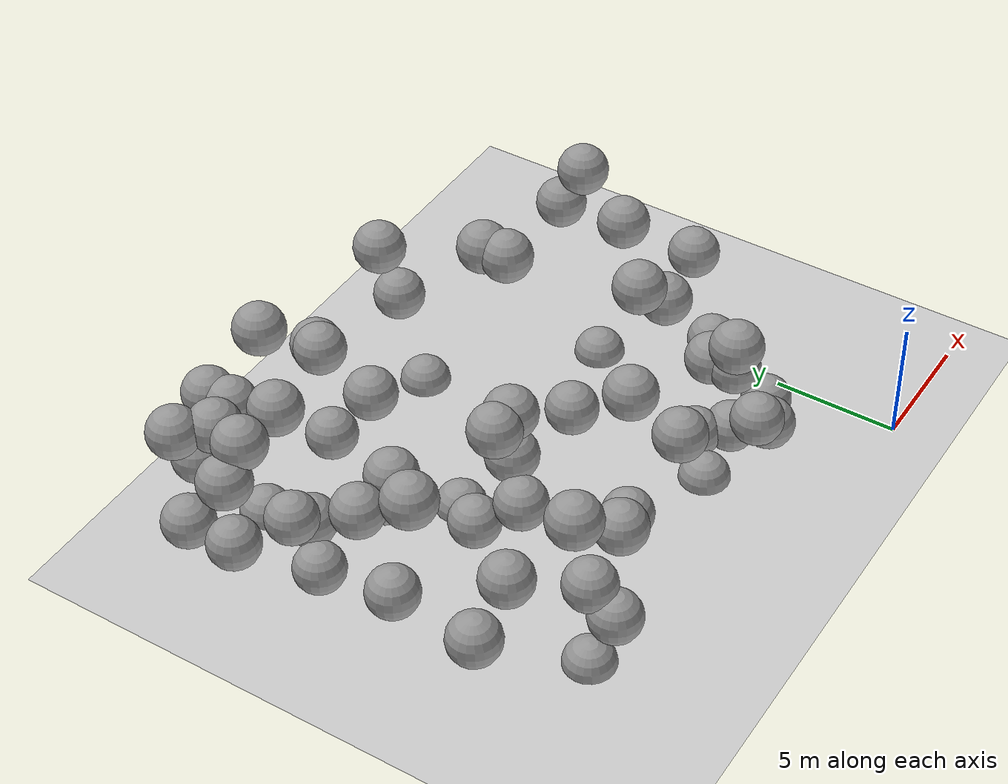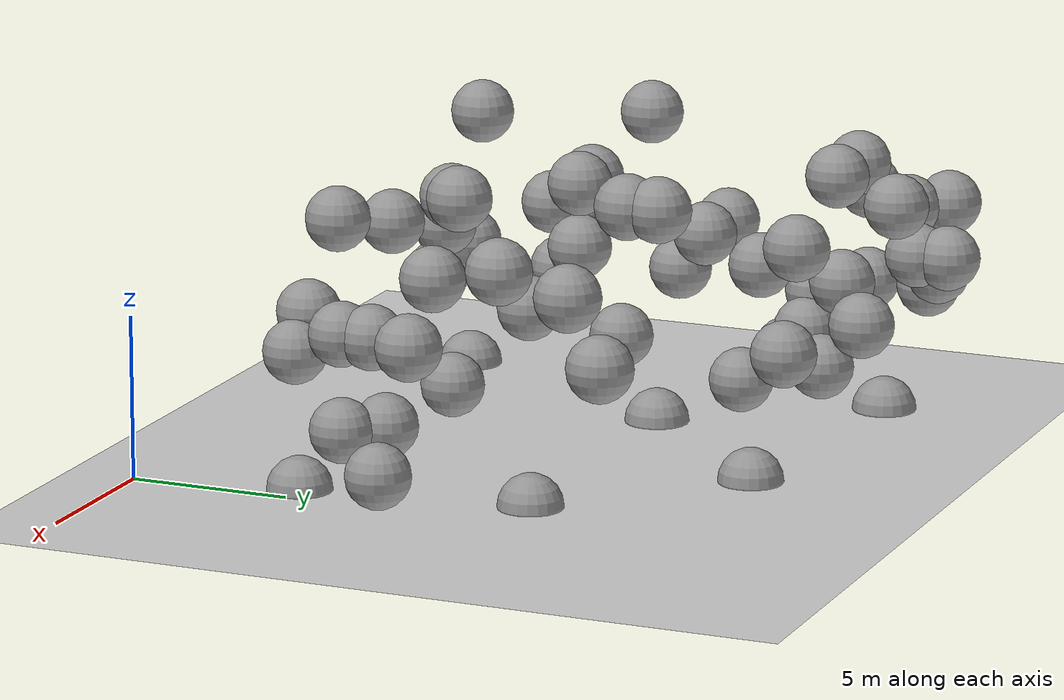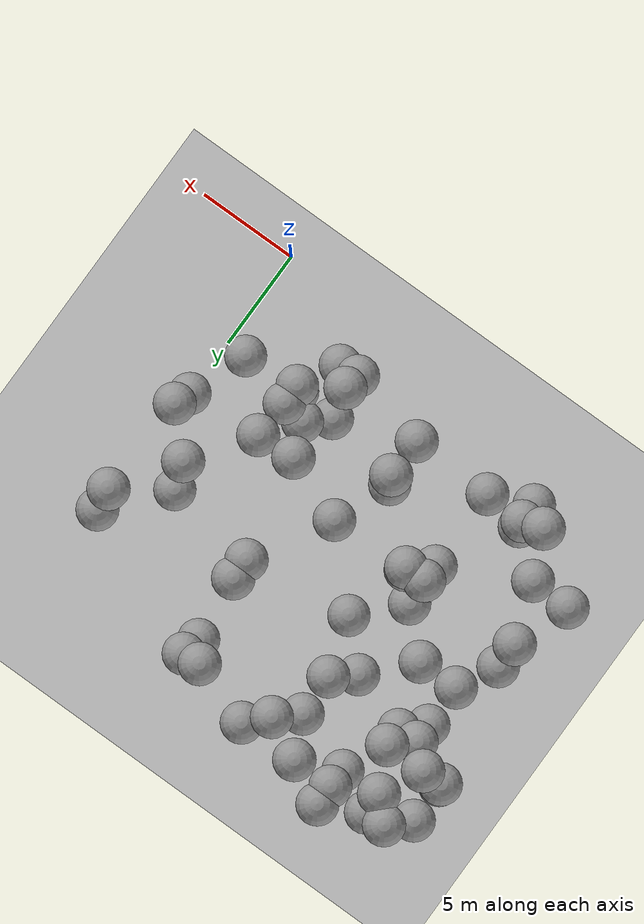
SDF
<sdf version="1.7">
 <world name="default">
  <model name="ground_plane">
   <static>1</static>
   <link name="link">
    <collision name="collision">
     <geometry><plane><normal>0 0 1</normal><size>100 100</size></plane></geometry>
     <surface>
      <contact><collide_bitmask>65535</collide_bitmask></contact>
      <friction><ode><mu>100</mu><mu2>50</mu2></ode></friction>
     </surface>
    </collision>
    <visual name="visual">
     <cast_shadows>0</cast_shadows>
     <geometry><plane><normal>0 0 1</normal><size>100 100</size></plane></geometry>
     <material>
      <script><uri>file://media/materials/scripts/gazebo.material</uri><name>Gazebo/Grey</name></script>
     </material>
    </visual>
   </link>
  </model>
  <model name="sphere_15">
   <static>1</static>
   <pose>-5 6 1 0 0 0</pose>
   <link name="link">
    <inertial>
     <mass>418.87902047863906</mass>
     <inertia>
      <ixx>167.55160819145564</ixx>
      <iyy>167.55160819145564</iyy>
      <izz>167.55160819145564</izz>
      <ixy>0</ixy>
      <ixz>0</ixz>
      <iyz>0</iyz>
     </inertia>
    </inertial>
    <collision name="collision"><geometry><sphere><radius>1.0</radius></sphere></geometry></collision>
    <visual name="visual">
     <geometry><sphere><radius>1.0</radius></sphere></geometry>
     <material>
      <script><uri>file://media/materials/scripts/gazebo.material</uri><name>Gazebo/Grey</name></script>
     </material>
    </visual>
   </link>
  </model>
  <model name="sphere_16">
   <static>1</static>
   <pose>-17 15 2 0 0 0</pose>
   <link name="link">
    <inertial>
     <mass>418.87902047863906</mass>
     <inertia>
      <ixx>167.55160819145564</ixx>
      <iyy>167.55160819145564</iyy>
      <izz>167.55160819145564</izz>
      <ixy>0</ixy>
      <ixz>0</ixz>
      <iyz>0</iyz>
     </inertia>
    </inertial>
    <collision name="collision"><geometry><sphere><radius>1.0</radius></sphere></geometry></collision>
    <visual name="visual">
     <geometry><sphere><radius>1.0</radius></sphere></geometry>
     <material>
      <script><uri>file://media/materials/scripts/gazebo.material</uri><name>Gazebo/Grey</name></script>
     </material>
    </visual>
   </link>
  </model>
  <model name="sphere_23">
   <static>1</static>
   <pose>-10 6 1 0 0 0</pose>
   <link name="link">
    <inertial>
     <mass>418.87902047863906</mass>
     <inertia>
      <ixx>167.55160819145564</ixx>
      <iyy>167.55160819145564</iyy>
      <izz>167.55160819145564</izz>
      <ixy>0</ixy>
      <ixz>0</ixz>
      <iyz>0</iyz>
     </inertia>
    </inertial>
    <collision name="collision"><geometry><sphere><radius>1.0</radius></sphere></geometry></collision>
    <visual name="visual">
     <geometry><sphere><radius>1.0</radius></sphere></geometry>
     <material>
      <script><uri>file://media/materials/scripts/gazebo.material</uri><name>Gazebo/Grey</name></script>
     </material>
    </visual>
   </link>
  </model>
  <model name="sphere_26">
   <static>1</static>
   <pose>-16 20 5 0 0 0</pose>
   <link name="link">
    <inertial>
     <mass>418.87902047863906</mass>
     <inertia>
      <ixx>167.55160819145564</ixx>
      <iyy>167.55160819145564</iyy>
      <izz>167.55160819145564</izz>
      <ixy>0</ixy>
      <ixz>0</ixz>
      <iyz>0</iyz>
     </inertia>
    </inertial>
    <collision name="collision"><geometry><sphere><radius>1.0</radius></sphere></geometry></collision>
    <visual name="visual">
     <geometry><sphere><radius>1.0</radius></sphere></geometry>
     <material>
      <script><uri>file://media/materials/scripts/gazebo.material</uri><name>Gazebo/Grey</name></script>
     </material>
    </visual>
   </link>
  </model>
  <model name="sphere_28">
   <static>1</static>
   <pose>-19 10 3 0 0 0</pose>
   <link name="link">
    <inertial>
     <mass>418.87902047863906</mass>
     <inertia>
      <ixx>167.55160819145564</ixx>
      <iyy>167.55160819145564</iyy>
      <izz>167.55160819145564</izz>
      <ixy>0</ixy>
      <ixz>0</ixz>
      <iyz>0</iyz>
     </inertia>
    </inertial>
    <collision name="collision"><geometry><sphere><radius>1.0</radius></sphere></geometry></collision>
    <visual name="visual">
     <geometry><sphere><radius>1.0</radius></sphere></geometry>
     <material>
      <script><uri>file://media/materials/scripts/gazebo.material</uri><name>Gazebo/Grey</name></script>
     </material>
    </visual>
   </link>
  </model>
  <model name="sphere_36">
   <static>1</static>
   <pose>-17 16 7 0 0 0</pose>
   <link name="link">
    <inertial>
     <mass>418.87902047863906</mass>
     <inertia>
      <ixx>167.55160819145564</ixx>
      <iyy>167.55160819145564</iyy>
      <izz>167.55160819145564</izz>
      <ixy>0</ixy>
      <ixz>0</ixz>
      <iyz>0</iyz>
     </inertia>
    </inertial>
    <collision name="collision"><geometry><sphere><radius>1.0</radius></sphere></geometry></collision>
    <visual name="visual">
     <geometry><sphere><radius>1.0</radius></sphere></geometry>
     <material>
      <script><uri>file://media/materials/scripts/gazebo.material</uri><name>Gazebo/Grey</name></script>
     </material>
    </visual>
   </link>
  </model>
  <model name="sphere_41">
   <static>1</static>
   <pose>-18 15 3 0 0 0</pose>
   <link name="link">
    <inertial>
     <mass>418.87902047863906</mass>
     <inertia>
      <ixx>167.55160819145564</ixx>
      <iyy>167.55160819145564</iyy>
      <izz>167.55160819145564</izz>
      <ixy>0</ixy>
      <ixz>0</ixz>
      <iyz>0</iyz>
     </inertia>
    </inertial>
    <collision name="collision"><geometry><sphere><radius>1.0</radius></sphere></geometry></collision>
    <visual name="visual">
     <geometry><sphere><radius>1.0</radius></sphere></geometry>
     <material>
      <script><uri>file://media/materials/scripts/gazebo.material</uri><name>Gazebo/Grey</name></script>
     </material>
    </visual>
   </link>
  </model>
  <model name="sphere_46">
   <static>1</static>
   <pose>-7 17 0 0 0 0</pose>
   <link name="link">
    <inertial>
     <mass>418.87902047863906</mass>
     <inertia>
      <ixx>167.55160819145564</ixx>
      <iyy>167.55160819145564</iyy>
      <izz>167.55160819145564</izz>
      <ixy>0</ixy>
      <ixz>0</ixz>
      <iyz>0</iyz>
     </inertia>
    </inertial>
    <collision name="collision"><geometry><sphere><radius>1.0</radius></sphere></geometry></collision>
    <visual name="visual">
     <geometry><sphere><radius>1.0</radius></sphere></geometry>
     <material>
      <script><uri>file://media/materials/scripts/gazebo.material</uri><name>Gazebo/Grey</name></script>
     </material>
    </visual>
   </link>
  </model>
  <model name="sphere_51">
   <static>1</static>
   <pose>-19 16 7 0 0 0</pose>
   <link name="link">
    <inertial>
     <mass>418.87902047863906</mass>
     <inertia>
      <ixx>167.55160819145564</ixx>
      <iyy>167.55160819145564</iyy>
      <izz>167.55160819145564</izz>
      <ixy>0</ixy>
      <ixz>0</ixz>
      <iyz>0</iyz>
     </inertia>
    </inertial>
    <collision name="collision"><geometry><sphere><radius>1.0</radius></sphere></geometry></collision>
    <visual name="visual">
     <geometry><sphere><radius>1.0</radius></sphere></geometry>
     <material>
      <script><uri>file://media/materials/scripts/gazebo.material</uri><name>Gazebo/Grey</name></script>
     </material>
    </visual>
   </link>
  </model>
  <model name="sphere_57">
   <static>1</static>
   <pose>0 8 1 0 0 0</pose>
   <link name="link">
    <inertial>
     <mass>418.87902047863906</mass>
     <inertia>
      <ixx>167.55160819145564</ixx>
      <iyy>167.55160819145564</iyy>
      <izz>167.55160819145564</izz>
      <ixy>0</ixy>
      <ixz>0</ixz>
      <iyz>0</iyz>
     </inertia>
    </inertial>
    <collision name="collision"><geometry><sphere><radius>1.0</radius></sphere></geometry></collision>
    <visual name="visual">
     <geometry><sphere><radius>1.0</radius></sphere></geometry>
     <material>
      <script><uri>file://media/materials/scripts/gazebo.material</uri><name>Gazebo/Grey</name></script>
     </material>
    </visual>
   </link>
  </model>
  <model name="sphere_59">
   <static>1</static>
   <pose>-4 6 4 0 0 0</pose>
   <link name="link">
    <inertial>
     <mass>418.87902047863906</mass>
     <inertia>
      <ixx>167.55160819145564</ixx>
      <iyy>167.55160819145564</iyy>
      <izz>167.55160819145564</izz>
      <ixy>0</ixy>
      <ixz>0</ixz>
      <iyz>0</iyz>
     </inertia>
    </inertial>
    <collision name="collision"><geometry><sphere><radius>1.0</radius></sphere></geometry></collision>
    <visual name="visual">
     <geometry><sphere><radius>1.0</radius></sphere></geometry>
     <material>
      <script><uri>file://media/materials/scripts/gazebo.material</uri><name>Gazebo/Grey</name></script>
     </material>
    </visual>
   </link>
  </model>
  <model name="sphere_61">
   <static>1</static>
   <pose>-14 4 5 0 0 0</pose>
   <link name="link">
    <inertial>
     <mass>418.87902047863906</mass>
     <inertia>
      <ixx>167.55160819145564</ixx>
      <iyy>167.55160819145564</iyy>
      <izz>167.55160819145564</izz>
      <ixy>0</ixy>
      <ixz>0</ixz>
      <iyz>0</iyz>
     </inertia>
    </inertial>
    <collision name="collision"><geometry><sphere><radius>1.0</radius></sphere></geometry></collision>
    <visual name="visual">
     <geometry><sphere><radius>1.0</radius></sphere></geometry>
     <material>
      <script><uri>file://media/materials/scripts/gazebo.material</uri><name>Gazebo/Grey</name></script>
     </material>
    </visual>
   </link>
  </model>
  <model name="sphere_62">
   <static>1</static>
   <pose>-14 8 4 0 0 0</pose>
   <link name="link">
    <inertial>
     <mass>418.87902047863906</mass>
     <inertia>
      <ixx>167.55160819145564</ixx>
      <iyy>167.55160819145564</iyy>
      <izz>167.55160819145564</izz>
      <ixy>0</ixy>
      <ixz>0</ixz>
      <iyz>0</iyz>
     </inertia>
    </inertial>
    <collision name="collision"><geometry><sphere><radius>1.0</radius></sphere></geometry></collision>
    <visual name="visual">
     <geometry><sphere><radius>1.0</radius></sphere></geometry>
     <material>
      <script><uri>file://media/materials/scripts/gazebo.material</uri><name>Gazebo/Grey</name></script>
     </material>
    </visual>
   </link>
  </model>
  <model name="sphere_63">
   <static>1</static>
   <pose>-18 14 1 0 0 0</pose>
   <link name="link">
    <inertial>
     <mass>418.87902047863906</mass>
     <inertia>
      <ixx>167.55160819145564</ixx>
      <iyy>167.55160819145564</iyy>
      <izz>167.55160819145564</izz>
      <ixy>0</ixy>
      <ixz>0</ixz>
      <iyz>0</iyz>
     </inertia>
    </inertial>
    <collision name="collision"><geometry><sphere><radius>1.0</radius></sphere></geometry></collision>
    <visual name="visual">
     <geometry><sphere><radius>1.0</radius></sphere></geometry>
     <material>
      <script><uri>file://media/materials/scripts/gazebo.material</uri><name>Gazebo/Grey</name></script>
     </material>
    </visual>
   </link>
  </model>
  <model name="sphere_71">
   <static>1</static>
   <pose>-14 14 1 0 0 0</pose>
   <link name="link">
    <inertial>
     <mass>418.87902047863906</mass>
     <inertia>
      <ixx>167.55160819145564</ixx>
      <iyy>167.55160819145564</iyy>
      <izz>167.55160819145564</izz>
      <ixy>0</ixy>
      <ixz>0</ixz>
      <iyz>0</iyz>
     </inertia>
    </inertial>
    <collision name="collision"><geometry><sphere><radius>1.0</radius></sphere></geometry></collision>
    <visual name="visual">
     <geometry><sphere><radius>1.0</radius></sphere></geometry>
     <material>
      <script><uri>file://media/materials/scripts/gazebo.material</uri><name>Gazebo/Grey</name></script>
     </material>
    </visual>
   </link>
  </model>
  <model name="sphere_78">
   <static>1</static>
   <pose>-16 4 4 0 0 0</pose>
   <link name="link">
    <inertial>
     <mass>418.87902047863906</mass>
     <inertia>
      <ixx>167.55160819145564</ixx>
      <iyy>167.55160819145564</iyy>
      <izz>167.55160819145564</izz>
      <ixy>0</ixy>
      <ixz>0</ixz>
      <iyz>0</iyz>
     </inertia>
    </inertial>
    <collision name="collision"><geometry><sphere><radius>1.0</radius></sphere></geometry></collision>
    <visual name="visual">
     <geometry><sphere><radius>1.0</radius></sphere></geometry>
     <material>
      <script><uri>file://media/materials/scripts/gazebo.material</uri><name>Gazebo/Grey</name></script>
     </material>
    </visual>
   </link>
  </model>
  <model name="sphere_86">
   <static>1</static>
   <pose>-4 5 4 0 0 0</pose>
   <link name="link">
    <inertial>
     <mass>418.87902047863906</mass>
     <inertia>
      <ixx>167.55160819145564</ixx>
      <iyy>167.55160819145564</iyy>
      <izz>167.55160819145564</izz>
      <ixy>0</ixy>
      <ixz>0</ixz>
      <iyz>0</iyz>
     </inertia>
    </inertial>
    <collision name="collision"><geometry><sphere><radius>1.0</radius></sphere></geometry></collision>
    <visual name="visual">
     <geometry><sphere><radius>1.0</radius></sphere></geometry>
     <material>
      <script><uri>file://media/materials/scripts/gazebo.material</uri><name>Gazebo/Grey</name></script>
     </material>
    </visual>
   </link>
  </model>
  <model name="sphere_90">
   <static>1</static>
   <pose>-19 19 6 0 0 0</pose>
   <link name="link">
    <inertial>
     <mass>418.87902047863906</mass>
     <inertia>
      <ixx>167.55160819145564</ixx>
      <iyy>167.55160819145564</iyy>
      <izz>167.55160819145564</izz>
      <ixy>0</ixy>
      <ixz>0</ixz>
      <iyz>0</iyz>
     </inertia>
    </inertial>
    <collision name="collision"><geometry><sphere><radius>1.0</radius></sphere></geometry></collision>
    <visual name="visual">
     <geometry><sphere><radius>1.0</radius></sphere></geometry>
     <material>
      <script><uri>file://media/materials/scripts/gazebo.material</uri><name>Gazebo/Grey</name></script>
     </material>
    </visual>
   </link>
  </model>
  <model name="sphere_95">
   <static>1</static>
   <pose>-7 14 8 0 0 0</pose>
   <link name="link">
    <inertial>
     <mass>418.87902047863906</mass>
     <inertia>
      <ixx>167.55160819145564</ixx>
      <iyy>167.55160819145564</iyy>
      <izz>167.55160819145564</izz>
      <ixy>0</ixy>
      <ixz>0</ixz>
      <iyz>0</iyz>
     </inertia>
    </inertial>
    <collision name="collision"><geometry><sphere><radius>1.0</radius></sphere></geometry></collision>
    <visual name="visual">
     <geometry><sphere><radius>1.0</radius></sphere></geometry>
     <material>
      <script><uri>file://media/materials/scripts/gazebo.material</uri><name>Gazebo/Grey</name></script>
     </material>
    </visual>
   </link>
  </model>
  <model name="sphere_96">
   <static>1</static>
   <pose>-18 12 5 0 0 0</pose>
   <link name="link">
    <inertial>
     <mass>418.87902047863906</mass>
     <inertia>
      <ixx>167.55160819145564</ixx>
      <iyy>167.55160819145564</iyy>
      <izz>167.55160819145564</izz>
      <ixy>0</ixy>
      <ixz>0</ixz>
      <iyz>0</iyz>
     </inertia>
    </inertial>
    <collision name="collision"><geometry><sphere><radius>1.0</radius></sphere></geometry></collision>
    <visual name="visual">
     <geometry><sphere><radius>1.0</radius></sphere></geometry>
     <material>
      <script><uri>file://media/materials/scripts/gazebo.material</uri><name>Gazebo/Grey</name></script>
     </material>
    </visual>
   </link>
  </model>
  <model name="sphere_97">
   <static>1</static>
   <pose>-6 3 4 0 0 0</pose>
   <link name="link">
    <inertial>
     <mass>418.87902047863906</mass>
     <inertia>
      <ixx>167.55160819145564</ixx>
      <iyy>167.55160819145564</iyy>
      <izz>167.55160819145564</izz>
      <ixy>0</ixy>
      <ixz>0</ixz>
      <iyz>0</iyz>
     </inertia>
    </inertial>
    <collision name="collision"><geometry><sphere><radius>1.0</radius></sphere></geometry></collision>
    <visual name="visual">
     <geometry><sphere><radius>1.0</radius></sphere></geometry>
     <material>
      <script><uri>file://media/materials/scripts/gazebo.material</uri><name>Gazebo/Grey</name></script>
     </material>
    </visual>
   </link>
  </model>
  <model name="sphere_100">
   <static>1</static>
   <pose>-18 6 5 0 0 0</pose>
   <link name="link">
    <inertial>
     <mass>418.87902047863906</mass>
     <inertia>
      <ixx>167.55160819145564</ixx>
      <iyy>167.55160819145564</iyy>
      <izz>167.55160819145564</izz>
      <ixy>0</ixy>
      <ixz>0</ixz>
      <iyz>0</iyz>
     </inertia>
    </inertial>
    <collision name="collision"><geometry><sphere><radius>1.0</radius></sphere></geometry></collision>
    <visual name="visual">
     <geometry><sphere><radius>1.0</radius></sphere></geometry>
     <material>
      <script><uri>file://media/materials/scripts/gazebo.material</uri><name>Gazebo/Grey</name></script>
     </material>
    </visual>
   </link>
  </model>
  <model name="sphere_101">
   <static>1</static>
   <pose>-2 12 0 0 0 0</pose>
   <link name="link">
    <inertial>
     <mass>418.87902047863906</mass>
     <inertia>
      <ixx>167.55160819145564</ixx>
      <iyy>167.55160819145564</iyy>
      <izz>167.55160819145564</izz>
      <ixy>0</ixy>
      <ixz>0</ixz>
      <iyz>0</iyz>
     </inertia>
    </inertial>
    <collision name="collision"><geometry><sphere><radius>1.0</radius></sphere></geometry></collision>
    <visual name="visual">
     <geometry><sphere><radius>1.0</radius></sphere></geometry>
     <material>
      <script><uri>file://media/materials/scripts/gazebo.material</uri><name>Gazebo/Grey</name></script>
     </material>
    </visual>
   </link>
  </model>
  <model name="sphere_108">
   <static>1</static>
   <pose>-16 18 0 0 0 0</pose>
   <link name="link">
    <inertial>
     <mass>418.87902047863906</mass>
     <inertia>
      <ixx>167.55160819145564</ixx>
      <iyy>167.55160819145564</iyy>
      <izz>167.55160819145564</izz>
      <ixy>0</ixy>
      <ixz>0</ixz>
      <iyz>0</iyz>
     </inertia>
    </inertial>
    <collision name="collision"><geometry><sphere><radius>1.0</radius></sphere></geometry></collision>
    <visual name="visual">
     <geometry><sphere><radius>1.0</radius></sphere></geometry>
     <material>
      <script><uri>file://media/materials/scripts/gazebo.material</uri><name>Gazebo/Grey</name></script>
     </material>
    </visual>
   </link>
  </model>
  <model name="sphere_109">
   <static>1</static>
   <pose>-2 11 7 0 0 0</pose>
   <link name="link">
    <inertial>
     <mass>418.87902047863906</mass>
     <inertia>
      <ixx>167.55160819145564</ixx>
      <iyy>167.55160819145564</iyy>
      <izz>167.55160819145564</izz>
      <ixy>0</ixy>
      <ixz>0</ixz>
      <iyz>0</iyz>
     </inertia>
    </inertial>
    <collision name="collision"><geometry><sphere><radius>1.0</radius></sphere></geometry></collision>
    <visual name="visual">
     <geometry><sphere><radius>1.0</radius></sphere></geometry>
     <material>
      <script><uri>file://media/materials/scripts/gazebo.material</uri><name>Gazebo/Grey</name></script>
     </material>
    </visual>
   </link>
  </model>
  <model name="sphere_113">
   <static>1</static>
   <pose>0 14 7 0 0 0</pose>
   <link name="link">
    <inertial>
     <mass>418.87902047863906</mass>
     <inertia>
      <ixx>167.55160819145564</ixx>
      <iyy>167.55160819145564</iyy>
      <izz>167.55160819145564</izz>
      <ixy>0</ixy>
      <ixz>0</ixz>
      <iyz>0</iyz>
     </inertia>
    </inertial>
    <collision name="collision"><geometry><sphere><radius>1.0</radius></sphere></geometry></collision>
    <visual name="visual">
     <geometry><sphere><radius>1.0</radius></sphere></geometry>
     <material>
      <script><uri>file://media/materials/scripts/gazebo.material</uri><name>Gazebo/Grey</name></script>
     </material>
    </visual>
   </link>
  </model>
  <model name="sphere_116">
   <static>1</static>
   <pose>-18 18 6 0 0 0</pose>
   <link name="link">
    <inertial>
     <mass>418.87902047863906</mass>
     <inertia>
      <ixx>167.55160819145564</ixx>
      <iyy>167.55160819145564</iyy>
      <izz>167.55160819145564</izz>
      <ixy>0</ixy>
      <ixz>0</ixz>
      <iyz>0</iyz>
     </inertia>
    </inertial>
    <collision name="collision"><geometry><sphere><radius>1.0</radius></sphere></geometry></collision>
    <visual name="visual">
     <geometry><sphere><radius>1.0</radius></sphere></geometry>
     <material>
      <script><uri>file://media/materials/scripts/gazebo.material</uri><name>Gazebo/Grey</name></script>
     </material>
    </visual>
   </link>
  </model>
  <model name="sphere_121">
   <static>1</static>
   <pose>-6 8 8 0 0 0</pose>
   <link name="link">
    <inertial>
     <mass>418.87902047863906</mass>
     <inertia>
      <ixx>167.55160819145564</ixx>
      <iyy>167.55160819145564</iyy>
      <izz>167.55160819145564</izz>
      <ixy>0</ixy>
      <ixz>0</ixz>
      <iyz>0</iyz>
     </inertia>
    </inertial>
    <collision name="collision"><geometry><sphere><radius>1.0</radius></sphere></geometry></collision>
    <visual name="visual">
     <geometry><sphere><radius>1.0</radius></sphere></geometry>
     <material>
      <script><uri>file://media/materials/scripts/gazebo.material</uri><name>Gazebo/Grey</name></script>
     </material>
    </visual>
   </link>
  </model>
  <model name="sphere_142">
   <static>1</static>
   <pose>-13 17 2 0 0 0</pose>
   <link name="link">
    <inertial>
     <mass>418.87902047863906</mass>
     <inertia>
      <ixx>167.55160819145564</ixx>
      <iyy>167.55160819145564</iyy>
      <izz>167.55160819145564</izz>
      <ixy>0</ixy>
      <ixz>0</ixz>
      <iyz>0</iyz>
     </inertia>
    </inertial>
    <collision name="collision"><geometry><sphere><radius>1.0</radius></sphere></geometry></collision>
    <visual name="visual">
     <geometry><sphere><radius>1.0</radius></sphere></geometry>
     <material>
      <script><uri>file://media/materials/scripts/gazebo.material</uri><name>Gazebo/Grey</name></script>
     </material>
    </visual>
   </link>
  </model>
  <model name="sphere_144">
   <static>1</static>
   <pose>-7 13 8 0 0 0</pose>
   <link name="link">
    <inertial>
     <mass>418.87902047863906</mass>
     <inertia>
      <ixx>167.55160819145564</ixx>
      <iyy>167.55160819145564</iyy>
      <izz>167.55160819145564</izz>
      <ixy>0</ixy>
      <ixz>0</ixz>
      <iyz>0</iyz>
     </inertia>
    </inertial>
    <collision name="collision"><geometry><sphere><radius>1.0</radius></sphere></geometry></collision>
    <visual name="visual">
     <geometry><sphere><radius>1.0</radius></sphere></geometry>
     <material>
      <script><uri>file://media/materials/scripts/gazebo.material</uri><name>Gazebo/Grey</name></script>
     </material>
    </visual>
   </link>
  </model>
  <model name="sphere_145">
   <static>1</static>
   <pose>-14 19 7 0 0 0</pose>
   <link name="link">
    <inertial>
     <mass>418.87902047863906</mass>
     <inertia>
      <ixx>167.55160819145564</ixx>
      <iyy>167.55160819145564</iyy>
      <izz>167.55160819145564</izz>
      <ixy>0</ixy>
      <ixz>0</ixz>
      <iyz>0</iyz>
     </inertia>
    </inertial>
    <collision name="collision"><geometry><sphere><radius>1.0</radius></sphere></geometry></collision>
    <visual name="visual">
     <geometry><sphere><radius>1.0</radius></sphere></geometry>
     <material>
      <script><uri>file://media/materials/scripts/gazebo.material</uri><name>Gazebo/Grey</name></script>
     </material>
    </visual>
   </link>
  </model>
  <model name="sphere_148">
   <static>1</static>
   <pose>-8 18 7 0 0 0</pose>
   <link name="link">
    <inertial>
     <mass>418.87902047863906</mass>
     <inertia>
      <ixx>167.55160819145564</ixx>
      <iyy>167.55160819145564</iyy>
      <izz>167.55160819145564</izz>
      <ixy>0</ixy>
      <ixz>0</ixz>
      <iyz>0</iyz>
     </inertia>
    </inertial>
    <collision name="collision"><geometry><sphere><radius>1.0</radius></sphere></geometry></collision>
    <visual name="visual">
     <geometry><sphere><radius>1.0</radius></sphere></geometry>
     <material>
      <script><uri>file://media/materials/scripts/gazebo.material</uri><name>Gazebo/Grey</name></script>
     </material>
    </visual>
   </link>
  </model>
  <model name="sphere_155">
   <static>1</static>
   <pose>-6 4 7 0 0 0</pose>
   <link name="link">
    <inertial>
     <mass>418.87902047863906</mass>
     <inertia>
      <ixx>167.55160819145564</ixx>
      <iyy>167.55160819145564</iyy>
      <izz>167.55160819145564</izz>
      <ixy>0</ixy>
      <ixz>0</ixz>
      <iyz>0</iyz>
     </inertia>
    </inertial>
    <collision name="collision"><geometry><sphere><radius>1.0</radius></sphere></geometry></collision>
    <visual name="visual">
     <geometry><sphere><radius>1.0</radius></sphere></geometry>
     <material>
      <script><uri>file://media/materials/scripts/gazebo.material</uri><name>Gazebo/Grey</name></script>
     </material>
    </visual>
   </link>
  </model>
  <model name="sphere_156">
   <static>1</static>
   <pose>-13 9 5 0 0 0</pose>
   <link name="link">
    <inertial>
     <mass>418.87902047863906</mass>
     <inertia>
      <ixx>167.55160819145564</ixx>
      <iyy>167.55160819145564</iyy>
      <izz>167.55160819145564</izz>
      <ixy>0</ixy>
      <ixz>0</ixz>
      <iyz>0</iyz>
     </inertia>
    </inertial>
    <collision name="collision"><geometry><sphere><radius>1.0</radius></sphere></geometry></collision>
    <visual name="visual">
     <geometry><sphere><radius>1.0</radius></sphere></geometry>
     <material>
      <script><uri>file://media/materials/scripts/gazebo.material</uri><name>Gazebo/Grey</name></script>
     </material>
    </visual>
   </link>
  </model>
  <model name="sphere_157">
   <static>1</static>
   <pose>-14 10 2 0 0 0</pose>
   <link name="link">
    <inertial>
     <mass>418.87902047863906</mass>
     <inertia>
      <ixx>167.55160819145564</ixx>
      <iyy>167.55160819145564</iyy>
      <izz>167.55160819145564</izz>
      <ixy>0</ixy>
      <ixz>0</ixz>
      <iyz>0</iyz>
     </inertia>
    </inertial>
    <collision name="collision"><geometry><sphere><radius>1.0</radius></sphere></geometry></collision>
    <visual name="visual">
     <geometry><sphere><radius>1.0</radius></sphere></geometry>
     <material>
      <script><uri>file://media/materials/scripts/gazebo.material</uri><name>Gazebo/Grey</name></script>
     </material>
    </visual>
   </link>
  </model>
  <model name="sphere_159">
   <static>1</static>
   <pose>0 15 5 0 0 0</pose>
   <link name="link">
    <inertial>
     <mass>418.87902047863906</mass>
     <inertia>
      <ixx>167.55160819145564</ixx>
      <iyy>167.55160819145564</iyy>
      <izz>167.55160819145564</izz>
      <ixy>0</ixy>
      <ixz>0</ixz>
      <iyz>0</iyz>
     </inertia>
    </inertial>
    <collision name="collision"><geometry><sphere><radius>1.0</radius></sphere></geometry></collision>
    <visual name="visual">
     <geometry><sphere><radius>1.0</radius></sphere></geometry>
     <material>
      <script><uri>file://media/materials/scripts/gazebo.material</uri><name>Gazebo/Grey</name></script>
     </material>
    </visual>
   </link>
  </model>
  <model name="sphere_161">
   <static>1</static>
   <pose>-13 15 5 0 0 0</pose>
   <link name="link">
    <inertial>
     <mass>418.87902047863906</mass>
     <inertia>
      <ixx>167.55160819145564</ixx>
      <iyy>167.55160819145564</iyy>
      <izz>167.55160819145564</izz>
      <ixy>0</ixy>
      <ixz>0</ixz>
      <iyz>0</iyz>
     </inertia>
    </inertial>
    <collision name="collision"><geometry><sphere><radius>1.0</radius></sphere></geometry></collision>
    <visual name="visual">
     <geometry><sphere><radius>1.0</radius></sphere></geometry>
     <material>
      <script><uri>file://media/materials/scripts/gazebo.material</uri><name>Gazebo/Grey</name></script>
     </material>
    </visual>
   </link>
  </model>
  <model name="sphere_163">
   <static>1</static>
   <pose>-12 12 0 0 0 0</pose>
   <link name="link">
    <inertial>
     <mass>418.87902047863906</mass>
     <inertia>
      <ixx>167.55160819145564</ixx>
      <iyy>167.55160819145564</iyy>
      <izz>167.55160819145564</izz>
      <ixy>0</ixy>
      <ixz>0</ixz>
      <iyz>0</iyz>
     </inertia>
    </inertial>
    <collision name="collision"><geometry><sphere><radius>1.0</radius></sphere></geometry></collision>
    <visual name="visual">
     <geometry><sphere><radius>1.0</radius></sphere></geometry>
     <material>
      <script><uri>file://media/materials/scripts/gazebo.material</uri><name>Gazebo/Grey</name></script>
     </material>
    </visual>
   </link>
  </model>
  <model name="sphere_167">
   <static>1</static>
   <pose>-20 16 3 0 0 0</pose>
   <link name="link">
    <inertial>
     <mass>418.87902047863906</mass>
     <inertia>
      <ixx>167.55160819145564</ixx>
      <iyy>167.55160819145564</iyy>
      <izz>167.55160819145564</izz>
      <ixy>0</ixy>
      <ixz>0</ixz>
      <iyz>0</iyz>
     </inertia>
    </inertial>
    <collision name="collision"><geometry><sphere><radius>1.0</radius></sphere></geometry></collision>
    <visual name="visual">
     <geometry><sphere><radius>1.0</radius></sphere></geometry>
     <material>
      <script><uri>file://media/materials/scripts/gazebo.material</uri><name>Gazebo/Grey</name></script>
     </material>
    </visual>
   </link>
  </model>
  <model name="sphere_169">
   <static>1</static>
   <pose>-9 9 4 0 0 0</pose>
   <link name="link">
    <inertial>
     <mass>418.87902047863906</mass>
     <inertia>
      <ixx>167.55160819145564</ixx>
      <iyy>167.55160819145564</iyy>
      <izz>167.55160819145564</izz>
      <ixy>0</ixy>
      <ixz>0</ixz>
      <iyz>0</iyz>
     </inertia>
    </inertial>
    <collision name="collision"><geometry><sphere><radius>1.0</radius></sphere></geometry></collision>
    <visual name="visual">
     <geometry><sphere><radius>1.0</radius></sphere></geometry>
     <material>
      <script><uri>file://media/materials/scripts/gazebo.material</uri><name>Gazebo/Grey</name></script>
     </material>
    </visual>
   </link>
  </model>
  <model name="sphere_173">
   <static>1</static>
   <pose>0 9 5 0 0 0</pose>
   <link name="link">
    <inertial>
     <mass>418.87902047863906</mass>
     <inertia>
      <ixx>167.55160819145564</ixx>
      <iyy>167.55160819145564</iyy>
      <izz>167.55160819145564</izz>
      <ixy>0</ixy>
      <ixz>0</ixz>
      <iyz>0</iyz>
     </inertia>
    </inertial>
    <collision name="collision"><geometry><sphere><radius>1.0</radius></sphere></geometry></collision>
    <visual name="visual">
     <geometry><sphere><radius>1.0</radius></sphere></geometry>
     <material>
      <script><uri>file://media/materials/scripts/gazebo.material</uri><name>Gazebo/Grey</name></script>
     </material>
    </visual>
   </link>
  </model>
  <model name="sphere_177">
   <static>1</static>
   <pose>-17 4 8 0 0 0</pose>
   <link name="link">
    <inertial>
     <mass>418.87902047863906</mass>
     <inertia>
      <ixx>167.55160819145564</ixx>
      <iyy>167.55160819145564</iyy>
      <izz>167.55160819145564</izz>
      <ixy>0</ixy>
      <ixz>0</ixz>
      <iyz>0</iyz>
     </inertia>
    </inertial>
    <collision name="collision"><geometry><sphere><radius>1.0</radius></sphere></geometry></collision>
    <visual name="visual">
     <geometry><sphere><radius>1.0</radius></sphere></geometry>
     <material>
      <script><uri>file://media/materials/scripts/gazebo.material</uri><name>Gazebo/Grey</name></script>
     </material>
    </visual>
   </link>
  </model>
  <model name="sphere_178">
   <static>1</static>
   <pose>-4 8 6 0 0 0</pose>
   <link name="link">
    <inertial>
     <mass>418.87902047863906</mass>
     <inertia>
      <ixx>167.55160819145564</ixx>
      <iyy>167.55160819145564</iyy>
      <izz>167.55160819145564</izz>
      <ixy>0</ixy>
      <ixz>0</ixz>
      <iyz>0</iyz>
     </inertia>
    </inertial>
    <collision name="collision"><geometry><sphere><radius>1.0</radius></sphere></geometry></collision>
    <visual name="visual">
     <geometry><sphere><radius>1.0</radius></sphere></geometry>
     <material>
      <script><uri>file://media/materials/scripts/gazebo.material</uri><name>Gazebo/Grey</name></script>
     </material>
    </visual>
   </link>
  </model>
  <model name="sphere_181">
   <static>1</static>
   <pose>-5 3 3 0 0 0</pose>
   <link name="link">
    <inertial>
     <mass>418.87902047863906</mass>
     <inertia>
      <ixx>167.55160819145564</ixx>
      <iyy>167.55160819145564</iyy>
      <izz>167.55160819145564</izz>
      <ixy>0</ixy>
      <ixz>0</ixz>
      <iyz>0</iyz>
     </inertia>
    </inertial>
    <collision name="collision"><geometry><sphere><radius>1.0</radius></sphere></geometry></collision>
    <visual name="visual">
     <geometry><sphere><radius>1.0</radius></sphere></geometry>
     <material>
      <script><uri>file://media/materials/scripts/gazebo.material</uri><name>Gazebo/Grey</name></script>
     </material>
    </visual>
   </link>
  </model>
  <model name="sphere_196">
   <static>1</static>
   <pose>-13 9 7 0 0 0</pose>
   <link name="link">
    <inertial>
     <mass>418.87902047863906</mass>
     <inertia>
      <ixx>167.55160819145564</ixx>
      <iyy>167.55160819145564</iyy>
      <izz>167.55160819145564</izz>
      <ixy>0</ixy>
      <ixz>0</ixz>
      <iyz>0</iyz>
     </inertia>
    </inertial>
    <collision name="collision"><geometry><sphere><radius>1.0</radius></sphere></geometry></collision>
    <visual name="visual">
     <geometry><sphere><radius>1.0</radius></sphere></geometry>
     <material>
      <script><uri>file://media/materials/scripts/gazebo.material</uri><name>Gazebo/Grey</name></script>
     </material>
    </visual>
   </link>
  </model>
  <model name="sphere_200">
   <static>1</static>
   <pose>-10 4 6 0 0 0</pose>
   <link name="link">
    <inertial>
     <mass>418.87902047863906</mass>
     <inertia>
      <ixx>167.55160819145564</ixx>
      <iyy>167.55160819145564</iyy>
      <izz>167.55160819145564</izz>
      <ixy>0</ixy>
      <ixz>0</ixz>
      <iyz>0</iyz>
     </inertia>
    </inertial>
    <collision name="collision"><geometry><sphere><radius>1.0</radius></sphere></geometry></collision>
    <visual name="visual">
     <geometry><sphere><radius>1.0</radius></sphere></geometry>
     <material>
      <script><uri>file://media/materials/scripts/gazebo.material</uri><name>Gazebo/Grey</name></script>
     </material>
    </visual>
   </link>
  </model>
  <model name="sphere_201">
   <static>1</static>
   <pose>-10 6 7 0 0 0</pose>
   <link name="link">
    <inertial>
     <mass>418.87902047863906</mass>
     <inertia>
      <ixx>167.55160819145564</ixx>
      <iyy>167.55160819145564</iyy>
      <izz>167.55160819145564</izz>
      <ixy>0</ixy>
      <ixz>0</ixz>
      <iyz>0</iyz>
     </inertia>
    </inertial>
    <collision name="collision"><geometry><sphere><radius>1.0</radius></sphere></geometry></collision>
    <visual name="visual">
     <geometry><sphere><radius>1.0</radius></sphere></geometry>
     <material>
      <script><uri>file://media/materials/scripts/gazebo.material</uri><name>Gazebo/Grey</name></script>
     </material>
    </visual>
   </link>
  </model>
  <model name="sphere_204">
   <static>1</static>
   <pose>-14 9 7 0 0 0</pose>
   <link name="link">
    <inertial>
     <mass>418.87902047863906</mass>
     <inertia>
      <ixx>167.55160819145564</ixx>
      <iyy>167.55160819145564</iyy>
      <izz>167.55160819145564</izz>
      <ixy>0</ixy>
      <ixz>0</ixz>
      <iyz>0</iyz>
     </inertia>
    </inertial>
    <collision name="collision"><geometry><sphere><radius>1.0</radius></sphere></geometry></collision>
    <visual name="visual">
     <geometry><sphere><radius>1.0</radius></sphere></geometry>
     <material>
      <script><uri>file://media/materials/scripts/gazebo.material</uri><name>Gazebo/Grey</name></script>
     </material>
    </visual>
   </link>
  </model>
  <model name="sphere_207">
   <static>1</static>
   <pose>-16 12 5 0 0 0</pose>
   <link name="link">
    <inertial>
     <mass>418.87902047863906</mass>
     <inertia>
      <ixx>167.55160819145564</ixx>
      <iyy>167.55160819145564</iyy>
      <izz>167.55160819145564</izz>
      <ixy>0</ixy>
      <ixz>0</ixz>
      <iyz>0</iyz>
     </inertia>
    </inertial>
    <collision name="collision"><geometry><sphere><radius>1.0</radius></sphere></geometry></collision>
    <visual name="visual">
     <geometry><sphere><radius>1.0</radius></sphere></geometry>
     <material>
      <script><uri>file://media/materials/scripts/gazebo.material</uri><name>Gazebo/Grey</name></script>
     </material>
    </visual>
   </link>
  </model>
  <model name="sphere_212">
   <static>1</static>
   <pose>-19 9 8 0 0 0</pose>
   <link name="link">
    <inertial>
     <mass>418.87902047863906</mass>
     <inertia>
      <ixx>167.55160819145564</ixx>
      <iyy>167.55160819145564</iyy>
      <izz>167.55160819145564</izz>
      <ixy>0</ixy>
      <ixz>0</ixz>
      <iyz>0</iyz>
     </inertia>
    </inertial>
    <collision name="collision"><geometry><sphere><radius>1.0</radius></sphere></geometry></collision>
    <visual name="visual">
     <geometry><sphere><radius>1.0</radius></sphere></geometry>
     <material>
      <script><uri>file://media/materials/scripts/gazebo.material</uri><name>Gazebo/Grey</name></script>
     </material>
    </visual>
   </link>
  </model>
  <model name="sphere_216">
   <static>1</static>
   <pose>-12 18 5 0 0 0</pose>
   <link name="link">
    <inertial>
     <mass>418.87902047863906</mass>
     <inertia>
      <ixx>167.55160819145564</ixx>
      <iyy>167.55160819145564</iyy>
      <izz>167.55160819145564</izz>
      <ixy>0</ixy>
      <ixz>0</ixz>
      <iyz>0</iyz>
     </inertia>
    </inertial>
    <collision name="collision"><geometry><sphere><radius>1.0</radius></sphere></geometry></collision>
    <visual name="visual">
     <geometry><sphere><radius>1.0</radius></sphere></geometry>
     <material>
      <script><uri>file://media/materials/scripts/gazebo.material</uri><name>Gazebo/Grey</name></script>
     </material>
    </visual>
   </link>
  </model>
  <model name="sphere_217">
   <static>1</static>
   <pose>-6 5 0 0 0 0</pose>
   <link name="link">
    <inertial>
     <mass>418.87902047863906</mass>
     <inertia>
      <ixx>167.55160819145564</ixx>
      <iyy>167.55160819145564</iyy>
      <izz>167.55160819145564</izz>
      <ixy>0</ixy>
      <ixz>0</ixz>
      <iyz>0</iyz>
     </inertia>
    </inertial>
    <collision name="collision"><geometry><sphere><radius>1.0</radius></sphere></geometry></collision>
    <visual name="visual">
     <geometry><sphere><radius>1.0</radius></sphere></geometry>
     <material>
      <script><uri>file://media/materials/scripts/gazebo.material</uri><name>Gazebo/Grey</name></script>
     </material>
    </visual>
   </link>
  </model>
  <model name="sphere_219">
   <static>1</static>
   <pose>-20 6 4 0 0 0</pose>
   <link name="link">
    <inertial>
     <mass>418.87902047863906</mass>
     <inertia>
      <ixx>167.55160819145564</ixx>
      <iyy>167.55160819145564</iyy>
      <izz>167.55160819145564</izz>
      <ixy>0</ixy>
      <ixz>0</ixz>
      <iyz>0</iyz>
     </inertia>
    </inertial>
    <collision name="collision"><geometry><sphere><radius>1.0</radius></sphere></geometry></collision>
    <visual name="visual">
     <geometry><sphere><radius>1.0</radius></sphere></geometry>
     <material>
      <script><uri>file://media/materials/scripts/gazebo.material</uri><name>Gazebo/Grey</name></script>
     </material>
    </visual>
   </link>
  </model>
  <model name="sphere_220">
   <static>1</static>
   <pose>-18 19 4 0 0 0</pose>
   <link name="link">
    <inertial>
     <mass>418.87902047863906</mass>
     <inertia>
      <ixx>167.55160819145564</ixx>
      <iyy>167.55160819145564</iyy>
      <izz>167.55160819145564</izz>
      <ixy>0</ixy>
      <ixz>0</ixz>
      <iyz>0</iyz>
     </inertia>
    </inertial>
    <collision name="collision"><geometry><sphere><radius>1.0</radius></sphere></geometry></collision>
    <visual name="visual">
     <geometry><sphere><radius>1.0</radius></sphere></geometry>
     <material>
      <script><uri>file://media/materials/scripts/gazebo.material</uri><name>Gazebo/Grey</name></script>
     </material>
    </visual>
   </link>
  </model>
  <model name="sphere_224">
   <static>1</static>
   <pose>-7 18 4 0 0 0</pose>
   <link name="link">
    <inertial>
     <mass>418.87902047863906</mass>
     <inertia>
      <ixx>167.55160819145564</ixx>
      <iyy>167.55160819145564</iyy>
      <izz>167.55160819145564</izz>
      <ixy>0</ixy>
      <ixz>0</ixz>
      <iyz>0</iyz>
     </inertia>
    </inertial>
    <collision name="collision"><geometry><sphere><radius>1.0</radius></sphere></geometry></collision>
    <visual name="visual">
     <geometry><sphere><radius>1.0</radius></sphere></geometry>
     <material>
      <script><uri>file://media/materials/scripts/gazebo.material</uri><name>Gazebo/Grey</name></script>
     </material>
    </visual>
   </link>
  </model>
  <model name="sphere_225">
   <static>1</static>
   <pose>-20 18 3 0 0 0</pose>
   <link name="link">
    <inertial>
     <mass>418.87902047863906</mass>
     <inertia>
      <ixx>167.55160819145564</ixx>
      <iyy>167.55160819145564</iyy>
      <izz>167.55160819145564</izz>
      <ixy>0</ixy>
      <ixz>0</ixz>
      <iyz>0</iyz>
     </inertia>
    </inertial>
    <collision name="collision"><geometry><sphere><radius>1.0</radius></sphere></geometry></collision>
    <visual name="visual">
     <geometry><sphere><radius>1.0</radius></sphere></geometry>
     <material>
      <script><uri>file://media/materials/scripts/gazebo.material</uri><name>Gazebo/Grey</name></script>
     </material>
    </visual>
   </link>
  </model>
  <model name="sphere_231">
   <static>1</static>
   <pose>-16 3 3 0 0 0</pose>
   <link name="link">
    <inertial>
     <mass>418.87902047863906</mass>
     <inertia>
      <ixx>167.55160819145564</ixx>
      <iyy>167.55160819145564</iyy>
      <izz>167.55160819145564</izz>
      <ixy>0</ixy>
      <ixz>0</ixz>
      <iyz>0</iyz>
     </inertia>
    </inertial>
    <collision name="collision"><geometry><sphere><radius>1.0</radius></sphere></geometry></collision>
    <visual name="visual">
     <geometry><sphere><radius>1.0</radius></sphere></geometry>
     <material>
      <script><uri>file://media/materials/scripts/gazebo.material</uri><name>Gazebo/Grey</name></script>
     </material>
    </visual>
   </link>
  </model>
  <model name="sphere_234">
   <static>1</static>
   <pose>-20 16 6 0 0 0</pose>
   <link name="link">
    <inertial>
     <mass>418.87902047863906</mass>
     <inertia>
      <ixx>167.55160819145564</ixx>
      <iyy>167.55160819145564</iyy>
      <izz>167.55160819145564</izz>
      <ixy>0</ixy>
      <ixz>0</ixz>
      <iyz>0</iyz>
     </inertia>
    </inertial>
    <collision name="collision"><geometry><sphere><radius>1.0</radius></sphere></geometry></collision>
    <visual name="visual">
     <geometry><sphere><radius>1.0</radius></sphere></geometry>
     <material>
      <script><uri>file://media/materials/scripts/gazebo.material</uri><name>Gazebo/Grey</name></script>
     </material>
    </visual>
   </link>
  </model>
  <model name="sphere_235">
   <static>1</static>
   <pose>-11 19 4 0 0 0</pose>
   <link name="link">
    <inertial>
     <mass>418.87902047863906</mass>
     <inertia>
      <ixx>167.55160819145564</ixx>
      <iyy>167.55160819145564</iyy>
      <izz>167.55160819145564</izz>
      <ixy>0</ixy>
      <ixz>0</ixz>
      <iyz>0</iyz>
     </inertia>
    </inertial>
    <collision name="collision"><geometry><sphere><radius>1.0</radius></sphere></geometry></collision>
    <visual name="visual">
     <geometry><sphere><radius>1.0</radius></sphere></geometry>
     <material>
      <script><uri>file://media/materials/scripts/gazebo.material</uri><name>Gazebo/Grey</name></script>
     </material>
    </visual>
   </link>
  </model>
  <model name="sphere_240">
   <static>1</static>
   <pose>-16 4 0 0 0 0</pose>
   <link name="link">
    <inertial>
     <mass>418.87902047863906</mass>
     <inertia>
      <ixx>167.55160819145564</ixx>
      <iyy>167.55160819145564</iyy>
      <izz>167.55160819145564</izz>
      <ixy>0</ixy>
      <ixz>0</ixz>
      <iyz>0</iyz>
     </inertia>
    </inertial>
    <collision name="collision"><geometry><sphere><radius>1.0</radius></sphere></geometry></collision>
    <visual name="visual">
     <geometry><sphere><radius>1.0</radius></sphere></geometry>
     <material>
      <script><uri>file://media/materials/scripts/gazebo.material</uri><name>Gazebo/Grey</name></script>
     </material>
    </visual>
   </link>
  </model>
  <model name="sphere_245">
   <static>1</static>
   <pose>-1 5 0 0 0 0</pose>
   <link name="link">
    <inertial>
     <mass>418.87902047863906</mass>
     <inertia>
      <ixx>167.55160819145564</ixx>
      <iyy>167.55160819145564</iyy>
      <izz>167.55160819145564</izz>
      <ixy>0</ixy>
      <ixz>0</ixz>
      <iyz>0</iyz>
     </inertia>
    </inertial>
    <collision name="collision"><geometry><sphere><radius>1.0</radius></sphere></geometry></collision>
    <visual name="visual">
     <geometry><sphere><radius>1.0</radius></sphere></geometry>
     <material>
      <script><uri>file://media/materials/scripts/gazebo.material</uri><name>Gazebo/Grey</name></script>
     </material>
    </visual>
   </link>
  </model>
  <model name="sphere_247">
   <static>1</static>
   <pose>-16 19 5 0 0 0</pose>
   <link name="link">
    <inertial>
     <mass>418.87902047863906</mass>
     <inertia>
      <ixx>167.55160819145564</ixx>
      <iyy>167.55160819145564</iyy>
      <izz>167.55160819145564</izz>
      <ixy>0</ixy>
      <ixz>0</ixz>
      <iyz>0</iyz>
     </inertia>
    </inertial>
    <collision name="collision"><geometry><sphere><radius>1.0</radius></sphere></geometry></collision>
    <visual name="visual">
     <geometry><sphere><radius>1.0</radius></sphere></geometry>
     <material>
      <script><uri>file://media/materials/scripts/gazebo.material</uri><name>Gazebo/Grey</name></script>
     </material>
    </visual>
   </link>
  </model>
  <model name="sphere_248">
   <static>1</static>
   <pose>-4 5 1 0 0 0</pose>
   <link name="link">
    <inertial>
     <mass>418.87902047863906</mass>
     <inertia>
      <ixx>167.55160819145564</ixx>
      <iyy>167.55160819145564</iyy>
      <izz>167.55160819145564</izz>
      <ixy>0</ixy>
      <ixz>0</ixz>
      <iyz>0</iyz>
     </inertia>
    </inertial>
    <collision name="collision"><geometry><sphere><radius>1.0</radius></sphere></geometry></collision>
    <visual name="visual">
     <geometry><sphere><radius>1.0</radius></sphere></geometry>
     <material>
      <script><uri>file://media/materials/scripts/gazebo.material</uri><name>Gazebo/Grey</name></script>
     </material>
    </visual>
   </link>
  </model>
 </world>
</sdf>
